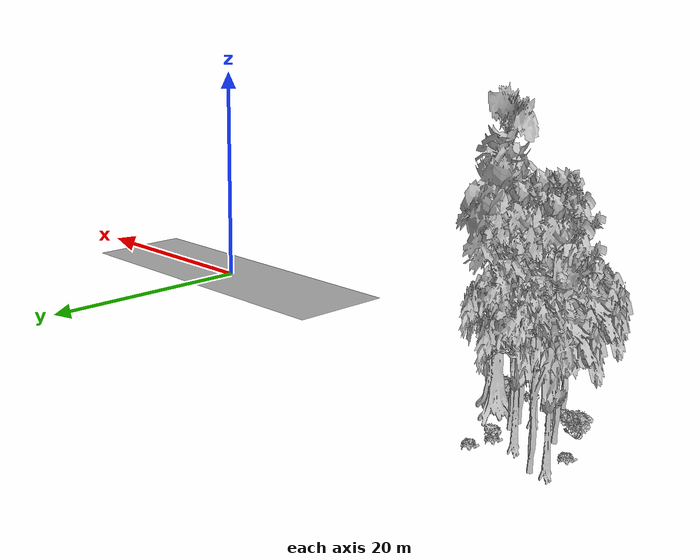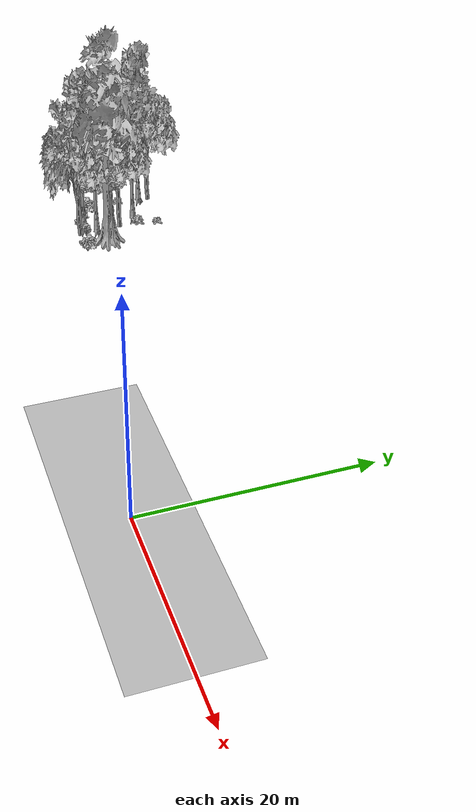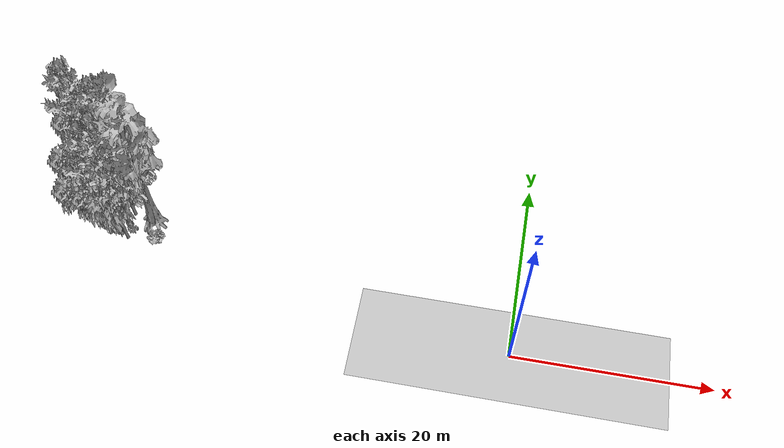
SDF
<sdf version="1.7">
 <world name="default">
  <model name="ground_plane">
   <static>1</static>
   <link name="link">
    <collision name="collision">
     <geometry><plane><normal>0 0 1</normal><size>100 100</size></plane></geometry>
     <surface><contact><ode><min_depth>0.01</min_depth><max_vel>0</max_vel></ode></contact></surface>
    </collision>
    <visual name="grass">
     <cast_shadows>0</cast_shadows>
     <geometry>
      <mesh>
       <scale>0.5814285714285714 0.18142857142857144 0.1</scale>
       <uri>file://grass_plane/meshes/grass_plane.dae</uri>
      </mesh>
     </geometry>
    </visual>
   </link>
  </model>
  <model name="Tree 35">
   <static>1</static>
   <pose>-42.80539835410666 7.082560066641111 0 1.57079 -0 0</pose>
   <link name="link">
    <collision name="collision">
     <geometry><mesh><scale>3.5 5 3.5</scale><uri>model://tree_9/meshes/tree_9.obj</uri></mesh></geometry>
    </collision>
    <visual name="visual">
     <geometry><mesh><scale>3.5 5 3.5</scale><uri>model://tree_9/meshes/tree_9.obj</uri></mesh></geometry>
    </visual>
   </link>
  </model>
  <model name="Tree 36">
   <static>1</static>
   <pose>-39.48312915004023 8.917611645218066 0 1.57079 -0 0</pose>
   <link name="link">
    <collision name="collision">
     <geometry><mesh><scale>3.5 5 3.5</scale><uri>model://tree_4/meshes/tree_4.obj</uri></mesh></geometry>
    </collision>
    <visual name="visual">
     <geometry><mesh><scale>3.5 5 3.5</scale><uri>model://tree_4/meshes/tree_4.obj</uri></mesh></geometry>
    </visual>
   </link>
  </model>
  <model name="Tree 58">
   <static>1</static>
   <pose>-43.74936159377879 12.527346472888404 0 1.57079 -0 0</pose>
   <link name="link">
    <collision name="collision">
     <geometry><mesh><scale>3.5 5 3.5</scale><uri>model://tree_9/meshes/tree_9.obj</uri></mesh></geometry>
    </collision>
    <visual name="visual">
     <geometry><mesh><scale>3.5 5 3.5</scale><uri>model://tree_9/meshes/tree_9.obj</uri></mesh></geometry>
    </visual>
   </link>
  </model>
  <model name="Tree 65">
   <static>1</static>
   <pose>-42.1677500827394 8.257916998349746 0 1.57079 -0 0</pose>
   <link name="link">
    <collision name="collision">
     <geometry><mesh><scale>3.5 5 3.5</scale><uri>model://tree_9/meshes/tree_9.obj</uri></mesh></geometry>
    </collision>
    <visual name="visual">
     <geometry><mesh><scale>3.5 5 3.5</scale><uri>model://tree_9/meshes/tree_9.obj</uri></mesh></geometry>
    </visual>
   </link>
  </model>
  <model name="Tree 93">
   <static>1</static>
   <pose>-41.903791713477176 9.36916360403804 0 1.57079 -0 0</pose>
   <link name="link">
    <collision name="collision">
     <geometry><mesh><scale>3.5 5 3.5</scale><uri>model://tree_2/meshes/tree_2.obj</uri></mesh></geometry>
    </collision>
    <visual name="visual">
     <geometry><mesh><scale>3.5 5 3.5</scale><uri>model://tree_2/meshes/tree_2.obj</uri></mesh></geometry>
    </visual>
   </link>
  </model>
  <model name="Tree 130">
   <static>1</static>
   <pose>-42.136476407830266 10.632046332180902 0 1.57079 -0 0</pose>
   <link name="link">
    <collision name="collision">
     <geometry><mesh><scale>3.5 5 3.5</scale><uri>model://tree_2/meshes/tree_2.obj</uri></mesh></geometry>
    </collision>
    <visual name="visual">
     <geometry><mesh><scale>3.5 5 3.5</scale><uri>model://tree_2/meshes/tree_2.obj</uri></mesh></geometry>
    </visual>
   </link>
  </model>
  <model name="Tree 132">
   <static>1</static>
   <pose>-45.36768409353786 10.289834431693599 0 1.57079 -0 0</pose>
   <link name="link">
    <collision name="collision">
     <geometry><mesh><scale>3.5 5 3.5</scale><uri>model://tree_2/meshes/tree_2.obj</uri></mesh></geometry>
    </collision>
    <visual name="visual">
     <geometry><mesh><scale>3.5 5 3.5</scale><uri>model://tree_2/meshes/tree_2.obj</uri></mesh></geometry>
    </visual>
   </link>
  </model>
  <model name="Tree 228">
   <static>1</static>
   <pose>-47.31256431685566 14.136344299943836 0 1.57079 -0 0</pose>
   <link name="link">
    <collision name="collision">
     <geometry><mesh><scale>3.5 5 3.5</scale><uri>model://tree_9/meshes/tree_9.obj</uri></mesh></geometry>
    </collision>
    <visual name="visual">
     <geometry><mesh><scale>3.5 5 3.5</scale><uri>model://tree_9/meshes/tree_9.obj</uri></mesh></geometry>
    </visual>
   </link>
  </model>
  <model name="Tree 269">
   <static>1</static>
   <pose>-46.86926722642686 14.992400288875476 0 1.57079 -0 0</pose>
   <link name="link">
    <collision name="collision">
     <geometry><mesh><scale>3.5 5 3.5</scale><uri>model://tree_2/meshes/tree_2.obj</uri></mesh></geometry>
    </collision>
    <visual name="visual">
     <geometry><mesh><scale>3.5 5 3.5</scale><uri>model://tree_2/meshes/tree_2.obj</uri></mesh></geometry>
    </visual>
   </link>
  </model>
  <model name="Tree 303">
   <static>1</static>
   <pose>-43.575449785178925 6.805185245590227 0 1.57079 -0 0</pose>
   <link name="link">
    <collision name="collision">
     <geometry><mesh><scale>3.5 5 3.5</scale><uri>model://tree_2/meshes/tree_2.obj</uri></mesh></geometry>
    </collision>
    <visual name="visual">
     <geometry><mesh><scale>3.5 5 3.5</scale><uri>model://tree_2/meshes/tree_2.obj</uri></mesh></geometry>
    </visual>
   </link>
  </model>
  <model name="Tree 437">
   <static>1</static>
   <pose>-41.730382105006626 6.3640786096051905 0 1.57079 -0 0</pose>
   <link name="link">
    <collision name="collision">
     <geometry><mesh><scale>3.5 5 3.5</scale><uri>model://tree_2/meshes/tree_2.obj</uri></mesh></geometry>
    </collision>
    <visual name="visual">
     <geometry><mesh><scale>3.5 5 3.5</scale><uri>model://tree_2/meshes/tree_2.obj</uri></mesh></geometry>
    </visual>
   </link>
  </model>
  <model name="Bush 4">
   <static>1</static>
   <pose>-38.812487702036634 6.612321648588793 0 1.57079 -0 0</pose>
   <link name="link">
    <collision name="collision">
     <geometry><mesh><scale>2 2 2</scale><uri>model://bush_3/meshes/bush_3.obj</uri></mesh></geometry>
     <surface><contact><collide_without_contact>false</collide_without_contact></contact></surface>
    </collision>
    <visual name="visual">
     <geometry><mesh><scale>2 2 2</scale><uri>model://bush_3/meshes/bush_3.obj</uri></mesh></geometry>
    </visual>
   </link>
  </model>
  <model name="Bush 10">
   <static>1</static>
   <pose>-42.04025488968052 12.64067531255262 0 1.57079 -0 0</pose>
   <link name="link">
    <collision name="collision">
     <geometry><mesh><scale>2 2 2</scale><uri>model://bush_3/meshes/bush_3.obj</uri></mesh></geometry>
     <surface><contact><collide_without_contact>false</collide_without_contact></contact></surface>
    </collision>
    <visual name="visual">
     <geometry><mesh><scale>2 2 2</scale><uri>model://bush_3/meshes/bush_3.obj</uri></mesh></geometry>
    </visual>
   </link>
  </model>
  <model name="Bush 11">
   <static>1</static>
   <pose>-41.86740632137065 14.590402734782849 0 1.57079 -0 0</pose>
   <link name="link">
    <collision name="collision">
     <geometry><mesh><scale>2 2 2</scale><uri>model://bush_2/meshes/bush_2.obj</uri></mesh></geometry>
     <surface><contact><collide_without_contact>false</collide_without_contact></contact></surface>
    </collision>
    <visual name="visual">
     <geometry><mesh><scale>2 2 2</scale><uri>model://bush_2/meshes/bush_2.obj</uri></mesh></geometry>
    </visual>
   </link>
  </model>
  <model name="Bush 35">
   <static>1</static>
   <pose>-45.874321374948344 8.675094834298484 0 1.57079 -0 0</pose>
   <link name="link">
    <collision name="collision">
     <geometry><mesh><scale>2 2 2</scale><uri>model://bush_4/meshes/bush_4.obj</uri></mesh></geometry>
     <surface><contact><collide_without_contact>false</collide_without_contact></contact></surface>
    </collision>
    <visual name="visual">
     <geometry><mesh><scale>2 2 2</scale><uri>model://bush_4/meshes/bush_4.obj</uri></mesh></geometry>
    </visual>
   </link>
  </model>
  <model name="Bush 69">
   <static>1</static>
   <pose>-41.003446525505964 7.028319610343193 0 1.57079 -0 0</pose>
   <link name="link">
    <collision name="collision">
     <geometry><mesh><scale>2 2 2</scale><uri>model://bush_5/meshes/bush_5.obj</uri></mesh></geometry>
     <surface><contact><collide_without_contact>false</collide_without_contact></contact></surface>
    </collision>
    <visual name="visual">
     <geometry><mesh><scale>2 2 2</scale><uri>model://bush_5/meshes/bush_5.obj</uri></mesh></geometry>
    </visual>
   </link>
  </model>
  <model name="Bush 114">
   <static>1</static>
   <pose>-38.342312762538604 6.332026169343276 0 1.57079 -0 0</pose>
   <link name="link">
    <collision name="collision">
     <geometry><mesh><scale>2 2 2</scale><uri>model://bush_1/meshes/bush_1.obj</uri></mesh></geometry>
     <surface><contact><collide_without_contact>false</collide_without_contact></contact></surface>
    </collision>
    <visual name="visual">
     <geometry><mesh><scale>2 2 2</scale><uri>model://bush_1/meshes/bush_1.obj</uri></mesh></geometry>
    </visual>
   </link>
  </model>
  <model name="Bush 153">
   <static>1</static>
   <pose>-47.243133965969726 11.797919614815747 0 1.57079 -0 0</pose>
   <link name="link">
    <collision name="collision">
     <geometry><mesh><scale>2 2 2</scale><uri>model://bush_2/meshes/bush_2.obj</uri></mesh></geometry>
     <surface><contact><collide_without_contact>false</collide_without_contact></contact></surface>
    </collision>
    <visual name="visual">
     <geometry><mesh><scale>2 2 2</scale><uri>model://bush_2/meshes/bush_2.obj</uri></mesh></geometry>
    </visual>
   </link>
  </model>
  <model name="Bush 188">
   <static>1</static>
   <pose>-44.36245477610275 7.446932100417055 0 1.57079 -0 0</pose>
   <link name="link">
    <collision name="collision">
     <geometry><mesh><scale>2 2 2</scale><uri>model://bush_3/meshes/bush_3.obj</uri></mesh></geometry>
     <surface><contact><collide_without_contact>false</collide_without_contact></contact></surface>
    </collision>
    <visual name="visual">
     <geometry><mesh><scale>2 2 2</scale><uri>model://bush_3/meshes/bush_3.obj</uri></mesh></geometry>
    </visual>
   </link>
  </model>
  <model name="Bush 211">
   <static>1</static>
   <pose>-45.707395778203654 8.018067256190442 0 1.57079 -0 0</pose>
   <link name="link">
    <collision name="collision">
     <geometry><mesh><scale>2 2 2</scale><uri>model://bush_1/meshes/bush_1.obj</uri></mesh></geometry>
     <surface><contact><collide_without_contact>false</collide_without_contact></contact></surface>
    </collision>
    <visual name="visual">
     <geometry><mesh><scale>2 2 2</scale><uri>model://bush_1/meshes/bush_1.obj</uri></mesh></geometry>
    </visual>
   </link>
  </model>
  <model name="Bush 246">
   <static>1</static>
   <pose>-43.591865128367445 6.977510741401122 0 1.57079 -0 0</pose>
   <link name="link">
    <collision name="collision">
     <geometry><mesh><scale>2 2 2</scale><uri>model://bush_3/meshes/bush_3.obj</uri></mesh></geometry>
     <surface><contact><collide_without_contact>false</collide_without_contact></contact></surface>
    </collision>
    <visual name="visual">
     <geometry><mesh><scale>2 2 2</scale><uri>model://bush_3/meshes/bush_3.obj</uri></mesh></geometry>
    </visual>
   </link>
  </model>
  <model name="Bush 260">
   <static>1</static>
   <pose>-42.3267228560416 12.766377152707992 0 1.57079 -0 0</pose>
   <link name="link">
    <collision name="collision">
     <geometry><mesh><scale>2 2 2</scale><uri>model://bush_2/meshes/bush_2.obj</uri></mesh></geometry>
     <surface><contact><collide_without_contact>false</collide_without_contact></contact></surface>
    </collision>
    <visual name="visual">
     <geometry><mesh><scale>2 2 2</scale><uri>model://bush_2/meshes/bush_2.obj</uri></mesh></geometry>
    </visual>
   </link>
  </model>
 </world>
</sdf>
